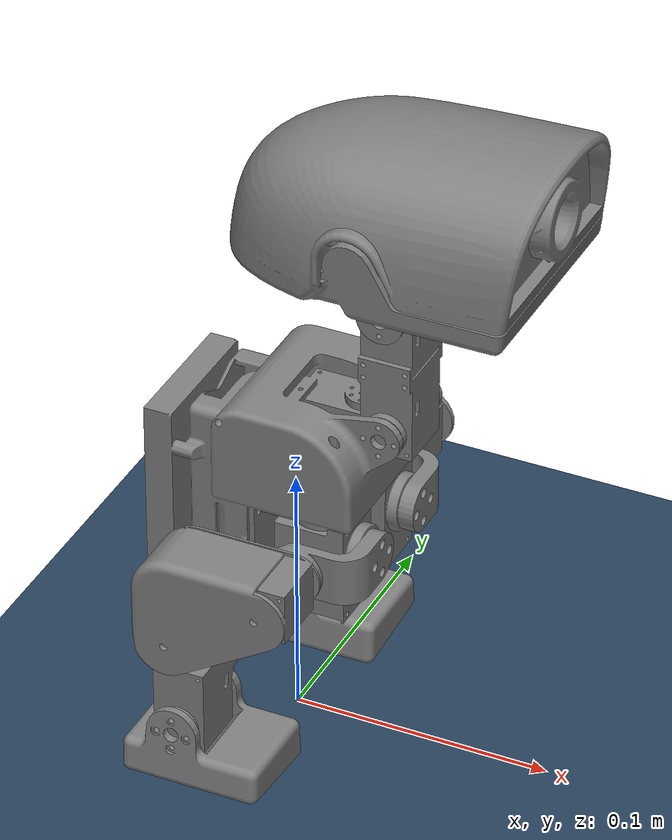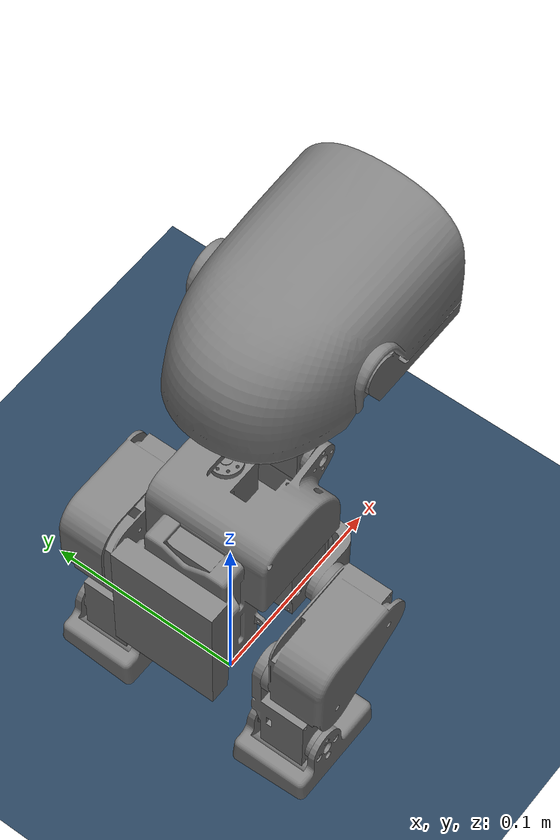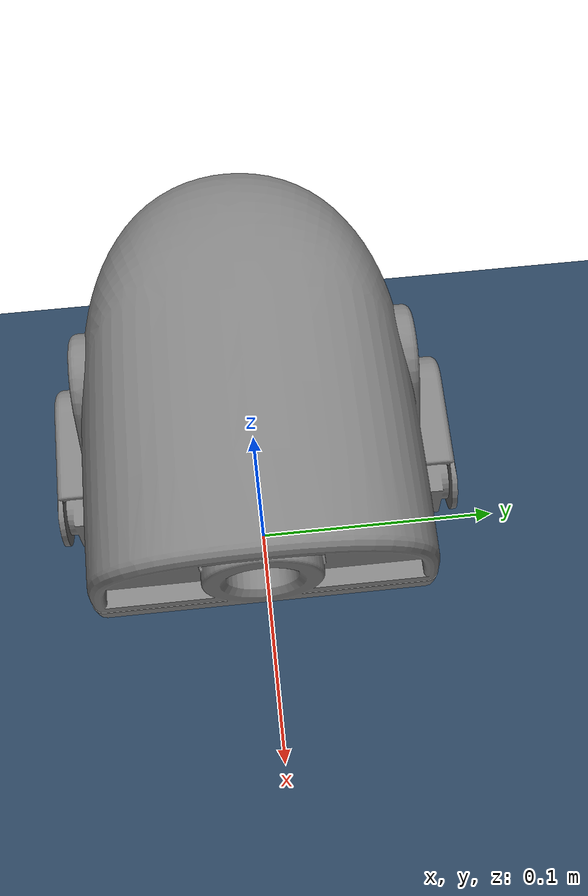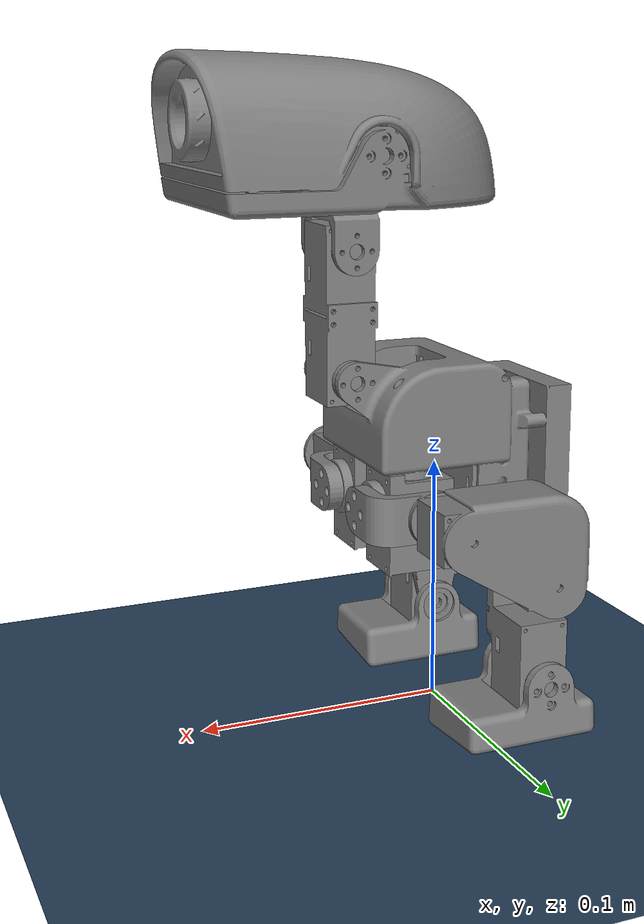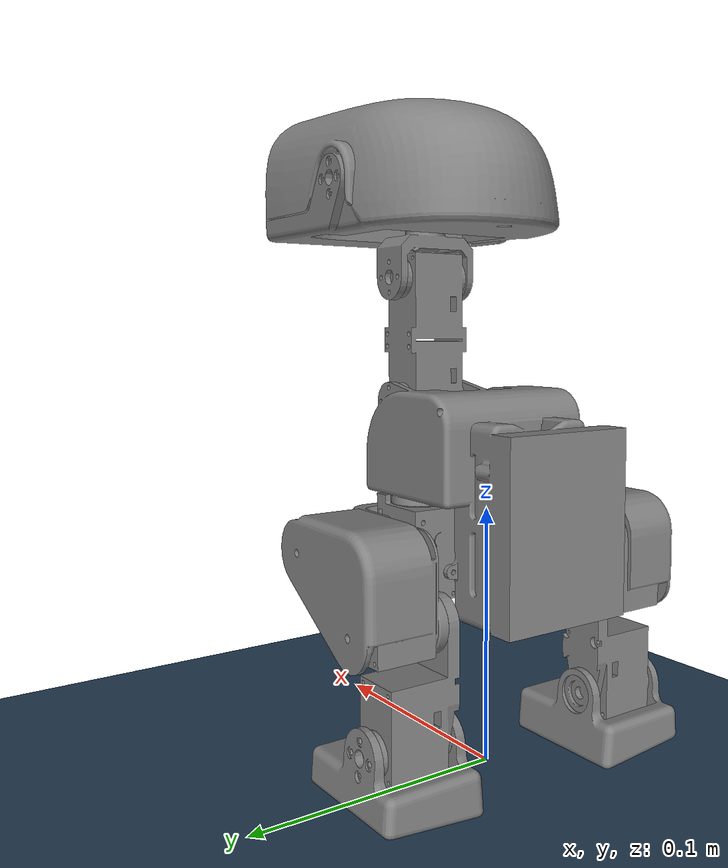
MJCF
<mujoco model="scene">
    <include file="robot_allcollisions.xml" />

    <visual>
        <headlight diffuse="0.6 0.6 0.6" ambient="0.3 0.3 0.3" specular="0 0 0" />
        <rgba haze="0.15 0.25 0.35 1" />
        <global azimuth="160" elevation="-20" />
    </visual>

    <asset>
        <texture type="skybox" builtin="gradient" rgb1="0.3 0.5 0.7" rgb2="0 0 0" width="512"
            height="3072" />
        <texture type="2d" name="groundplane" builtin="checker" mark="edge" rgb1="0.2 0.3 0.4"
            rgb2="0.1 0.2 0.3"
            markrgb="0.8 0.8 0.8" width="300" height="300" />
        <material name="groundplane" texture="groundplane" texuniform="true" texrepeat="5 5"
            reflectance="0.2" />
    </asset>

    <worldbody>
        <light pos="0 0 3.5" dir="0 0 -1" directional="true" />
        <geom name="floor" size="0 0 0.05" pos="0 0 0" type="plane" material="groundplane" />
    </worldbody>
    <keyframe>
        <!-- STAND: hip_pitch / ankle ±24°. Trunk z puts the soles 1 mm above the floor. -->
        <key name="STAND" qpos="
        0 0 0.139439 1 0 0 0
        0 -0.087266463 -0.41887902 -0.00494 0.41887902 0.34906585 0.34906585 0 0 0 0.087266463 0.41887902 0.00494 -0.41887902"
         ctrl="0 -0.087266463 -0.41887902 -0.00494 0.41887902 0.34906585 0.34906585 0 0 0 0.087266463 0.41887902 0.00494 -0.41887902"
        />
        <key name="SIT" qpos="
        0 0 0.0984284 1 0 0 0
        0 0 -0.5236 1.0472 0 0.5 1.6 0 0 0 0 0.5236 -1.0472 0"
         ctrl="0 0 -0.5236 1.0472 0 0.5 1.6 0 0 0 0 0.5236 -1.0472 0"
        />
        <key name="FOLD" qpos="
        0 0 0.0716605 1 0 0 0
        0 0 1.57 1.57 0 1 1 0 0 0 0 -1.57 -1.57 0"
         ctrl="0 0 1.57 1.57 0 1 1 0 0 0 0 -1.57 -1.57 0"
        />
        <key name="INIT" qpos="0 0 0.129394 1 0 0 0 0 0 0 0 0 0 0 0 0 0 0 0 0 0" ctrl="0 0 0 0 0 0 0 0 0 0 0 0 0 0"/>
    </keyframe>
</mujoco>

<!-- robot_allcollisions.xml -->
<!-- XgoDuck MJCF. Mass and inertia from CAD, scaled to 0.8 kg. -->
<mujoco model="xgoduck">
  <compiler angle="radian" meshdir="assets" autolimits="true"/>
  <default>
    <default class="microduck">
      <joint frictionloss="0.1" armature="0.005"/>
      <position kp="50" dampratio="1"/>
      <default class="visual">
        <geom type="mesh" contype="0" conaffinity="0" group="2"/>
      </default>
      <default class="collision">
        <geom group="3" conaffinity="0"/>
      </default>
    </default>
  </default>
  <default>
    <default class="chosen_actuator">
      <!-- HLS1910 companion PD for bare MuJoCo viewing. Training uses BAM. -->
      <geom contype="0" conaffinity="0"/>
      <joint damping="0.109" frictionloss="0.012" armature="0.0018"/>
      <position kp="0.84" kv="0.0" forcerange="-1.04 1.04" ctrlrange="-10.0 10.0"/>
    </default>
  </default>
  <sensor>
    <framequat name="orientation" objtype="site" noise="0.001" objname="imu"/>
    <gyro name="angular-velocity" site="imu" noise="0.005"/>
    <gyro name="imu_ang_vel" site="imu"/>
    <velocimeter name="imu_lin_vel" site="imu"/>
    <accelerometer name="imu_accel" site="imu"/>
    <subtreeangmom name="root_angmom" body="trunk_base"/>
  </sensor>
  <default>
    <default class="self_collision_only">
      <geom group="3" contype="0" conaffinity="0"/>
    </default>
    <equality solref="0.002 1" solimp="0.99 0.999 0.0005 0.5 2"/>
  </default>

  <worldbody>
    <body name="trunk_base" pos="0 0 0.129394" quat="1 0 0 0" childclass="microduck">
      <freejoint name="trunk_base_freejoint"/>
      <inertial pos="-0.014 -1.3e-05 -0.023873" mass="0.23786514" fullinertia="0.00010191741 9.1379909e-05 5.3093945e-05 -2.3844364e-08 -1.4681453e-06 -9.201477e-08"/>
      <geom type="mesh" class="visual" mesh="trunk_base"/>
      <geom type="mesh" name="trunk_collision" class="collision" mesh="trunk_base"/>
      <site group="3" name="imu" pos="-0.013982 -1.3e-05 -0.023873"/>
      <body name="yaw2roll" pos="0.02 0.0175 -0.026" quat="-2.59734e-06 0.707105 -0.707108 2.59735e-06">
        <joint axis="0 0 1" name="left_hip_yaw" type="hinge" range="-0.22 0.45" class="chosen_actuator"/>
        <inertial pos="-1.0689e-10 -0.00010485 0.018887" mass="0.030933135" fullinertia="4.3068049e-06 3.811553e-06 2.7207414e-06 2.1338088e-14 1.0540369e-14 1.7341857e-07"/>
        <geom type="mesh" class="visual" mesh="left_hip_yaw"/>
        <geom type="mesh" name="left_hip_yaw_collision" class="collision" mesh="left_hip_yaw"/>
        <body name="hip_l" pos="0 -0.0145 0.0145" quat="0.499998 0.5 -0.5 0.500002">
          <joint axis="0 0 1" name="left_hip_roll" type="hinge" range="-0.3839724354387525 0.3839724354387525" class="chosen_actuator"/>
          <inertial pos="8.6736e-18 0.012268 -0.0041364" mass="0.010666598" fullinertia="1.6417233e-06 1.1904713e-06 1.0745399e-06 1.6054459e-22 -2.7540294e-22 -5.2159152e-07"/>
          <geom type="mesh" class="visual" mesh="left_hip_roll"/>
          <geom type="mesh" name="left_hip_roll_collision" class="collision" mesh="left_hip_roll"/>
          <body name="upper_leg_left" pos="0 0.0225 -0.0165" quat="0.617278 -0.61728 0.344915 0.344916">
            <joint axis="0 0 1" name="left_hip_pitch" type="hinge" range="-1.570796326795005 1.5707963267947882" class="chosen_actuator"/>
            <inertial pos="0.022799 0.0061554 0.015683" mass="0.056532972" fullinertia="7.3116013e-06 8.8465627e-06 1.0403628e-05 3.5979497e-07 -1.0854292e-07 -4.8132298e-07"/>
            <geom type="mesh" class="visual" mesh="left_hip_pitch"/>
            <geom type="mesh" name="left_thigh_collision" class="collision" mesh="left_hip_pitch"/>
            <body name="leg" pos="0.041977 0 0" quat="-3.20658e-06 0.872964 -0.487784 1.79173e-06">
              <joint axis="0 0 1" name="left_knee" type="hinge" range="-1.570796326795012 1.570796326794781" class="chosen_actuator"/>
              <inertial pos="0.030928 7.8063e-18 -0.0067903" mass="0.026666496" fullinertia="1.8489345e-06 4.2290835e-06 4.0560601e-06 -1.8019244e-22 -4.3467394e-08 -1.2167266e-22"/>
              <geom type="mesh" class="visual" mesh="left_knee"/>
              <geom type="mesh" name="left_shin_collision" class="collision" mesh="left_knee"/>
              <body name="ankle_left" pos="0.042 0 -0.024" quat="-3.67321e-06 -1 0 0">
                <joint axis="0 0 1" name="left_ankle" type="hinge" range="-1.5707963267949019 1.5707963267948912" class="chosen_actuator"/>
                <inertial pos="0.01477 -0.0075922 -0.01564" mass="0.030933135" fullinertia="1.2152529e-05 5.2700389e-06 8.6874692e-06 -1.9451229e-08 -3.0445218e-07 3.1188711e-08"/>
                <geom type="mesh" class="visual" mesh="left_ankle"/>
                <geom type="mesh" name="left_foot_collision" class="collision" mesh="left_ankle"/>
                <site group="3" name="left_foot" pos="0.022982865 -0.0053683133 -0.033328407"/>
              </body>
            </body>
          </body>
        </body>
      </body>
      <body name="neck" pos="0.041 0.0145 0.0095" quat="0.499998 0.5 -0.5 0.500002">
        <joint axis="0 0 1" name="neck_pitch" type="hinge" range="-2.356194490192345 1.0471975511965976" class="chosen_actuator"/>
        <inertial pos="0.025 5.1348e-16 0.014348" mass="0.043733053" fullinertia="3.6457377e-06 6.3130906e-06 5.4418791e-06 -5.8722842e-22 -9.5505426e-23 5.35801e-23"/>
        <geom type="mesh" class="visual" mesh="neck_pitch"/>
        <geom type="mesh" name="neck_collision" class="collision" mesh="neck_pitch"/>
        <body name="neck_pitch" pos="0.05 0 0" quat="-2.59734e-06 0.707105 -0.707108 2.59735e-06">
          <joint axis="0 0 1" name="head_pitch" type="hinge" range="-1.8325957145940461 1.8325957145940461" class="chosen_actuator"/>
          <inertial pos="1.9859e-10 -0.0093372 -0.0145" mass="0.0042717593" fullinertia="9.265434e-07 8.1702944e-07 3.5772571e-07 -1.400951e-13 9.3916199e-14 -2.5255305e-15"/>
          <geom type="mesh" class="visual" mesh="head_pitch"/>
          <geom type="mesh" name="head_pitch_collision" class="collision" mesh="head_pitch"/>
          <body name="yaw_roll_motion" pos="0 -0.01925 -0.0145" quat="0.499998 0.5 0.5 -0.500002">
            <joint axis="0 0 1" name="head_yaw" type="hinge" range="-2.967059728390373 2.967059728390348" class="chosen_actuator"/>
            <inertial pos="0.0059166 -0.00040642 0.01546" mass="0.035199775" fullinertia="3.6089899e-06 4.9127696e-06 4.9127696e-06 7.8711715e-08 1.4264607e-07 5.6367482e-08"/>
            <geom type="mesh" class="visual" mesh="head_yaw"/>
            <geom type="mesh" name="head_yaw_collision" class="collision" mesh="head_yaw"/>
            <body name="jaw_soft" pos="0 -0.0179 0.0145" quat="0.707105 0.707108 0 0">
              <joint axis="0 0 1" name="head_roll" type="hinge" range="-0.43633231299859127 0.4363323129985735" class="chosen_actuator"/>
              <inertial pos="-0.0012631 0.0023517 -0.02251" mass="0.16746559" fullinertia="0.00014709831 0.0002267026 0.00010319013 9.2488596e-07 3.383014e-06 -8.432146e-06"/>
              <geom type="mesh" class="visual" mesh="head_roll"/>
              <geom type="mesh" name="head_collision" class="collision" mesh="head_roll"/>
              <site group="3" name="head_camera" pos="0.00037724792 0.015116275 -0.076575988"/>
              <camera name="head_camera" pos="0.00037724792 0.015116275 -0.076575988" quat="0 0 -1 0"/>
              <site group="3" name="tof" pos="-0.019622752 0.015116128 -0.076575988"/>
              <site group="3" name="head_imu" pos="-0.0012631 0.0023517 -0.02251"/>
              <site group="3" name="mouth_tip" pos="0.0 -0.01234994 -0.07399628" quat="0.5 -0.5 0.5 0.5"/>
            </body>
          </body>
        </body>
      </body>
      <body name="bearing_roll" pos="0.02 -0.0175 -0.026" quat="-2.59734e-06 0.707105 -0.707108 2.59735e-06">
        <joint axis="0 0 1" name="right_hip_yaw" type="hinge" range="-0.45 0.22" class="chosen_actuator"/>
        <inertial pos="-1.0689e-10 -0.00010485 0.018887" mass="0.030933135" fullinertia="4.3068049e-06 3.811553e-06 2.7207414e-06 2.1338088e-14 1.0540369e-14 1.7341857e-07"/>
        <geom type="mesh" class="visual" mesh="right_hip_yaw"/>
        <geom type="mesh" name="right_hip_yaw_collision" class="collision" mesh="right_hip_yaw"/>
        <body name="hip_l_2" pos="0 -0.0145 0.0145" quat="0.499998 0.5 0.5 -0.500002">
          <joint axis="0 0 1" name="right_hip_roll" type="hinge" range="-0.3839724354387525 0.3839724354387525" class="chosen_actuator"/>
          <inertial pos="-1.7347e-18 0.012268 -0.0041364" mass="0.010666598" fullinertia="1.6417233e-06 1.1904713e-06 1.0745399e-06 1.3341464e-22 -7.5283703e-23 -5.2159152e-07"/>
          <geom type="mesh" class="visual" mesh="right_hip_roll"/>
          <geom type="mesh" name="right_hip_roll_collision" class="collision" mesh="right_hip_roll"/>
          <body name="upper_leg_right" pos="0 0.0225 -0.0165" quat="-0.344919 0.344913 -0.617281 -0.617276">
            <joint axis="0 0 1" name="right_hip_pitch" type="hinge" range="-1.5707963267949268 1.5707963267948664" class="chosen_actuator"/>
            <inertial pos="0.022799 -0.0061554 0.015683" mass="0.056532972" fullinertia="7.3116013e-06 8.8465627e-06 1.0403628e-05 -3.5979497e-07 -1.0854292e-07 4.8132298e-07"/>
            <geom type="mesh" class="visual" mesh="right_hip_pitch"/>
            <geom type="mesh" name="right_thigh_collision" class="collision" mesh="right_hip_pitch"/>
            <body name="leg_2" pos="0.041977 0 0" quat="-3.20658e-06 0.872964 0.487784 -1.79173e-06">
              <joint axis="0 0 1" name="right_knee" type="hinge" range="-1.570796326794932 1.570796326794861" class="chosen_actuator"/>
              <inertial pos="0.030928 9.541e-18 -0.0067903" mass="0.026666496" fullinertia="1.8489345e-06 4.2290835e-06 4.0560601e-06 2.491798e-22 -4.3467394e-08 -3.7299926e-23"/>
              <geom type="mesh" class="visual" mesh="right_knee"/>
              <geom type="mesh" name="right_shin_collision" class="collision" mesh="right_knee"/>
              <body name="ankle_right" pos="0.042 0 -0.024" quat="-3.67321e-06 -1 0 0">
                <joint axis="0 0 1" name="right_ankle" type="hinge" range="-1.5707963267949054 1.5707963267948877" class="chosen_actuator"/>
                <inertial pos="0.01477 0.007592 -0.01564" mass="0.030933135" fullinertia="1.2152529e-05 5.2700389e-06 8.6874692e-06 1.9470238e-08 -3.0445218e-07 -3.1104223e-08"/>
                <geom type="mesh" class="visual" mesh="right_ankle"/>
                <geom type="mesh" name="right_foot_collision" class="collision" mesh="right_ankle"/>
                <site group="3" name="right_foot" pos="0.022982865 0.0053683132 -0.033328408"/>
              </body>
            </body>
          </body>
        </body>
      </body>
    </body>
  </worldbody>
  <asset>
    <mesh file="trunk_base.stl"/>
    <mesh file="left_hip_yaw.stl"/>
    <mesh file="left_hip_roll.stl"/>
    <mesh file="left_hip_pitch.stl"/>
    <mesh file="left_knee.stl"/>
    <mesh file="left_ankle.stl"/>
    <mesh file="neck_pitch.stl"/>
    <mesh file="head_pitch.stl"/>
    <mesh file="head_yaw.stl"/>
    <mesh file="head_roll.stl"/>
    <mesh file="right_hip_yaw.stl"/>
    <mesh file="right_hip_roll.stl"/>
    <mesh file="right_hip_pitch.stl"/>
    <mesh file="right_knee.stl"/>
    <mesh file="right_ankle.stl"/>
  </asset>
  <actuator>
    <position class="chosen_actuator" name="left_hip_yaw" joint="left_hip_yaw"/>
    <position class="chosen_actuator" name="left_hip_roll" joint="left_hip_roll"/>
    <position class="chosen_actuator" name="left_hip_pitch" joint="left_hip_pitch"/>
    <position class="chosen_actuator" name="left_knee" joint="left_knee"/>
    <position class="chosen_actuator" name="left_ankle" joint="left_ankle"/>
    <position class="chosen_actuator" name="neck_pitch" joint="neck_pitch"/>
    <position class="chosen_actuator" name="head_pitch" joint="head_pitch"/>
    <position class="chosen_actuator" name="head_yaw" joint="head_yaw"/>
    <position class="chosen_actuator" name="head_roll" joint="head_roll"/>
    <position class="chosen_actuator" name="right_hip_yaw" joint="right_hip_yaw"/>
    <position class="chosen_actuator" name="right_hip_roll" joint="right_hip_roll"/>
    <position class="chosen_actuator" name="right_hip_pitch" joint="right_hip_pitch"/>
    <position class="chosen_actuator" name="right_knee" joint="right_knee"/>
    <position class="chosen_actuator" name="right_ankle" joint="right_ankle"/>
  </actuator>
  <equality/>
</mujoco>
